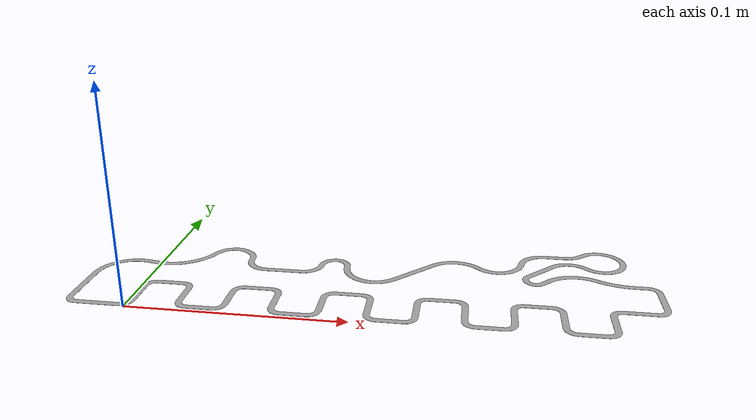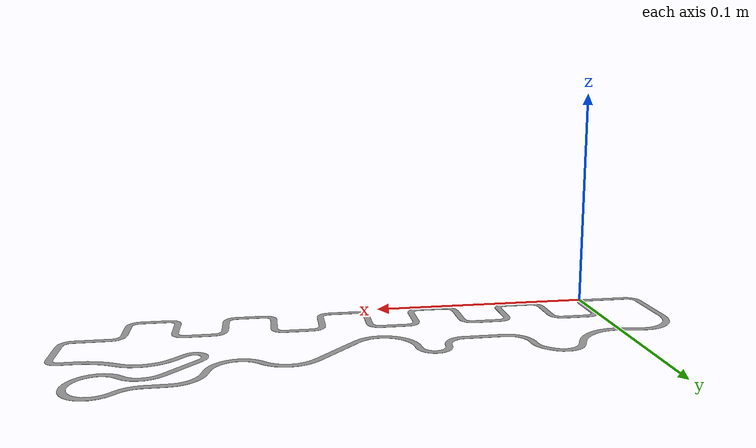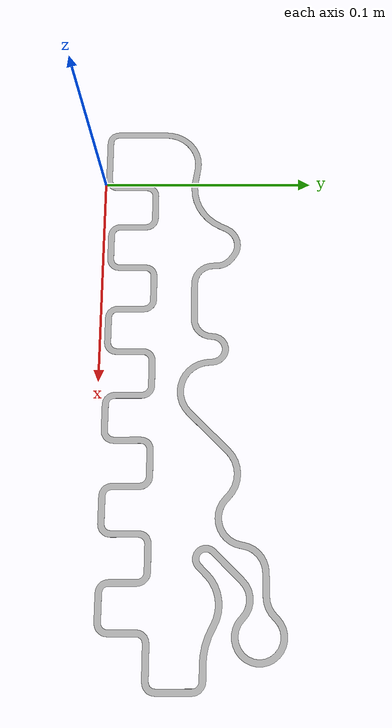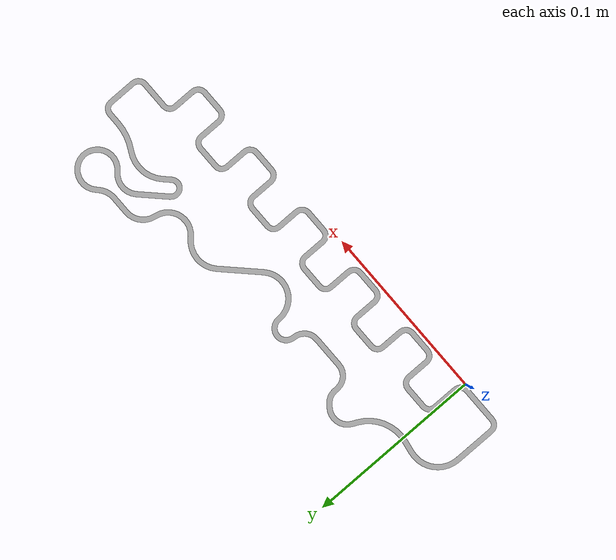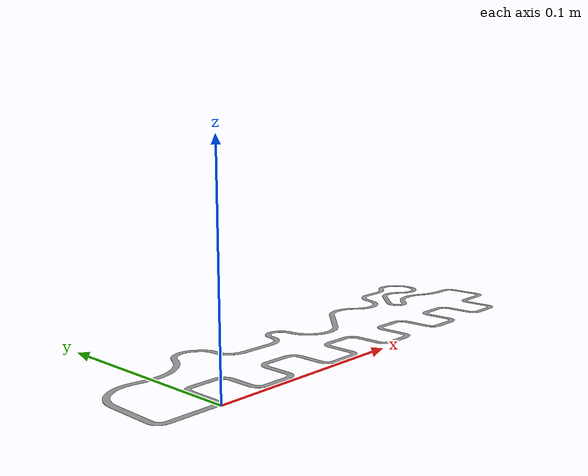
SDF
<?xml version="1.0" ?>
<sdf version="1.4">
  <model name="(DS) Autodrive">
    <static>true</static>
    <link name="link">
      <inertial>
        <pose>0 0 0 0 0 0</pose>
        <mass>1</mass>
        <inertia>
          <ixx>1</ixx>
          <iyy>1</iyy>
          <izz>1</izz>
          <ixy>0</ixy>
          <ixz>0</ixz>
        </inertia>
      </inertial>
      <collision name="collision">
        <geometry>
          <mesh>
            <uri>model://ds_autodrive/meshes/track.dae</uri>
            <scale>0.001 0.001 0.001</scale>
          </mesh>
        </geometry>
      </collision>

      <visual name="visual">
        <geometry>
          <mesh>
            <uri>model://ds_autodrive/meshes/track.dae</uri>
            <scale>0.001 0.001 0.001</scale>
          </mesh>
        </geometry>
      </visual>
    </link>
  </model>
</sdf>
